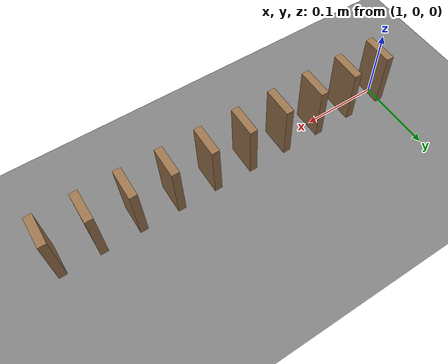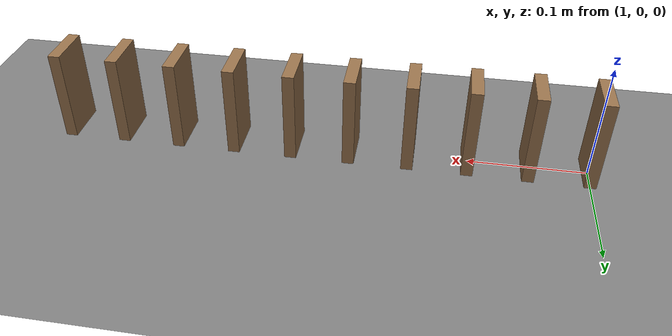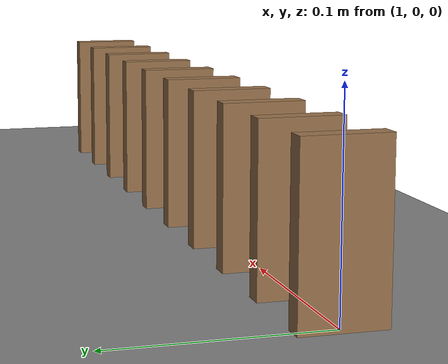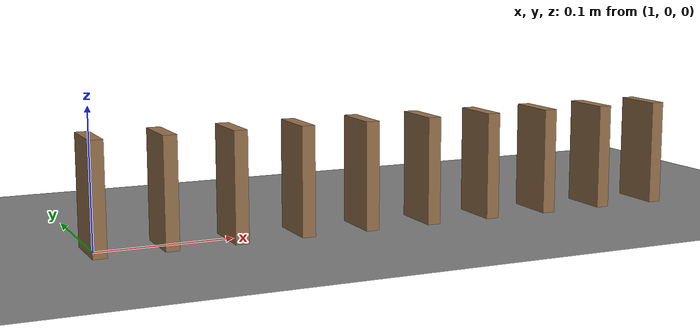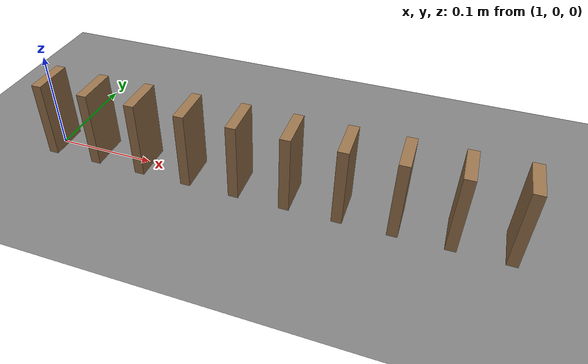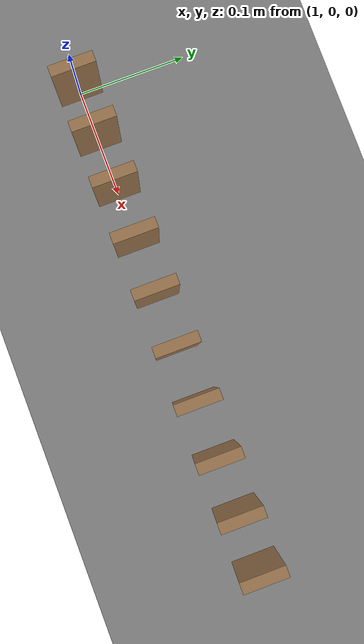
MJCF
<mujoco model="domino_row">
  <compiler angle="radian"/>
  <option timestep="0.002"/>
  <worldbody>
    <geom name="floor" type="plane" size="4 4 0.1" friction="0.8 0.005 0.002"/>
    <body name="domino1" pos="1 0 0.04">
      <freejoint/>
      <geom name="domino1" type="box" pos="0 0 0" size="0.005 0.02 0.04" mass="0.025" friction="0.6 0.005 0.002" rgba="0.6 0.45 0.3 1"/>
    </body>
    <body name="domino2" pos="1.05 0 0.04">
      <freejoint/>
      <geom name="domino2" type="box" pos="0 0 0" size="0.005 0.02 0.04" mass="0.025" friction="0.6 0.005 0.002" rgba="0.6 0.45 0.3 1"/>
    </body>
    <body name="domino3" pos="1.1 0 0.04">
      <freejoint/>
      <geom name="domino3" type="box" pos="0 0 0" size="0.005 0.02 0.04" mass="0.025" friction="0.6 0.005 0.002" rgba="0.6 0.45 0.3 1"/>
    </body>
    <body name="domino4" pos="1.15 0 0.04">
      <freejoint/>
      <geom name="domino4" type="box" pos="0 0 0" size="0.005 0.02 0.04" mass="0.025" friction="0.6 0.005 0.002" rgba="0.6 0.45 0.3 1"/>
    </body>
    <body name="domino5" pos="1.2 0 0.04">
      <freejoint/>
      <geom name="domino5" type="box" pos="0 0 0" size="0.005 0.02 0.04" mass="0.025" friction="0.6 0.005 0.002" rgba="0.6 0.45 0.3 1"/>
    </body>
    <body name="domino6" pos="1.25 0 0.04">
      <freejoint/>
      <geom name="domino6" type="box" pos="0 0 0" size="0.005 0.02 0.04" mass="0.025" friction="0.6 0.005 0.002" rgba="0.6 0.45 0.3 1"/>
    </body>
    <body name="domino7" pos="1.3 0 0.04">
      <freejoint/>
      <geom name="domino7" type="box" pos="0 0 0" size="0.005 0.02 0.04" mass="0.025" friction="0.6 0.005 0.002" rgba="0.6 0.45 0.3 1"/>
    </body>
    <body name="domino8" pos="1.35 0 0.04">
      <freejoint/>
      <geom name="domino8" type="box" pos="0 0 0" size="0.005 0.02 0.04" mass="0.025" friction="0.6 0.005 0.002" rgba="0.6 0.45 0.3 1"/>
    </body>
    <body name="domino9" pos="1.4 0 0.04">
      <freejoint/>
      <geom name="domino9" type="box" pos="0 0 0" size="0.005 0.02 0.04" mass="0.025" friction="0.6 0.005 0.002" rgba="0.6 0.45 0.3 1"/>
    </body>
    <body name="domino10" pos="1.45 0 0.04">
      <freejoint/>
      <geom name="domino10" type="box" pos="0 0 0" size="0.005 0.02 0.04" mass="0.025" friction="0.6 0.005 0.002" rgba="0.6 0.45 0.3 1"/>
    </body>
  </worldbody>
  <keyframe>
    <key name="start" qpos="1 0 0.04 1 0 0 0 1.05 0 0.04 1 0 0 0 1.1 0 0.04 1 0 0 0 1.15 0 0.04 1 0 0 0 1.2 0 0.04 1 0 0 0 1.25 0 0.04 1 0 0 0 1.3 0 0.04 1 0 0 0 1.35 0 0.04 1 0 0 0 1.4 0 0.04 1 0 0 0 1.45 0 0.04 1 0 0 0" qvel="0 0 0 0 15 0 0 0 0 0 0 0 0 0 0 0 0 0 0 0 0 0 0 0 0 0 0 0 0 0 0 0 0 0 0 0 0 0 0 0 0 0 0 0 0 0 0 0 0 0 0 0 0 0 0 0 0 0 0 0"/>
  </keyframe>
</mujoco>
